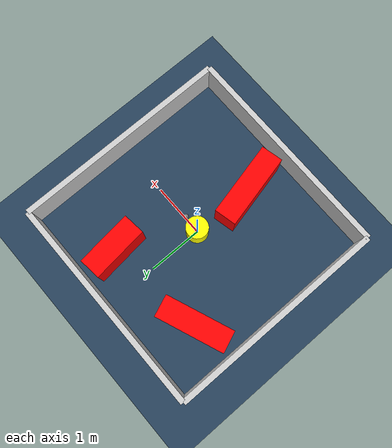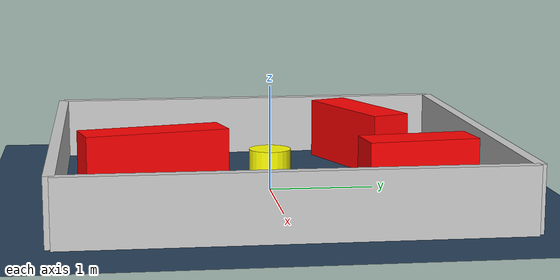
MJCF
<?xml version="1.0" ?>
<mujoco model="generated_environment">
  <option timestep="0.01" integrator="RK4" cone="elliptic"/>
  <default>
    <geom density="1"/>
  </default>
  <asset>
    <texture builtin="gradient" height="3072" rgb1="0.3 0.5 0.7" rgb2="0 0 0" type="skybox" width="512"/>
    <texture builtin="checker" height="300" mark="edge" markrgb="0.8 0.8 0.8" name="groundplane" rgb1="0.2 0.3 0.4" rgb2="0.1 0.2 0.3" type="2d" width="300"/>
    <material name="groundplane" reflectance="0.2" texrepeat="5 5" texture="groundplane" texuniform="true"/>
    <material name="robot" rgba="0.0 1.0 0.0 1"/>
  </asset>
  <worldbody>
    <light dir="0 0 -1" directional="true" pos="0 0 1.5"/>
    <geom condim="4" friction="1.0 0.005 0.001" material="groundplane" name="floor" size="0 0 0.05" type="plane"/>
    <body name="walls">
      <geom name="wall_1" condim="4" pos="-2.0 0.0 0.3" rgba="0.800000011920929 0.800000011920929 0.800000011920929 1.0" size="0.05 2.0 0.3" type="box"/>
      <geom name="wall_2" condim="4" pos="2.0 0.0 0.3" rgba="0.800000011920929 0.800000011920929 0.800000011920929 1.0" size="0.05 2.0 0.3" type="box"/>
      <geom name="wall_3" condim="4" pos="0.0 -2.0 0.3" rgba="0.800000011920929 0.800000011920929 0.800000011920929 1.0" size="2.0 0.05 0.3" type="box"/>
      <geom name="wall_4" condim="4" pos="0.0 2.0 0.3" rgba="0.800000011920929 0.800000011920929 0.800000011920929 1.0" size="2.0 0.05 0.3" type="box"/>
    </body>
    <body name="robot">
      <joint name="joint_x" type="slide" pos="0 0 0" axis="1 0 0"/>
      <joint name="joint_y" type="slide" pos="0 0 0" axis="0 1 0"/>
      <geom name="robot" type="sphere" pos="0.3 0.0 0.2" size="0.05" mass="5." friction="1.0 0.005 0.0001" condim="4" rgba="0.5 0.5 0.5 1.0"/>
      <site name="sensor_ball"/>
    </body>
    <body name="obstacle_movable_1">
      <geom name="obstacle_movable_1" condim="4" pos="0.0 0.0 0.2" euler="0 0 0.0" friction="1.0 0.005 0.001" rgba="1.0 1.0 0.0 1.0" size="0.2 0.2 0.0" type="cylinder" mass="0.1"/>
      <joint type="free"/>
    </body>
    <body name="obstacle_2_static">
      <geom name="obstacle_2_static" condim="4" pos="-1.1940994448564473 1.080529678050265 0.3" euler="0 0 201.63277722252064" friction="1.0 0.005 0.001" rgba="1 0 0 1" size="0.624104761732382 0.2 0.3" type="box"/>
    </body>
    <body name="obstacle_3_static">
      <geom name="obstacle_3_static" condim="4" pos="0.6417290198028494 1.2952219207702742 0.3" euler="0 0 96.19397295882423" friction="1.0 0.005 0.001" rgba="1 0 0 1" size="0.5183131151232603 0.2 0.3" type="box"/>
    </body>
    <body name="obstacle_4_static">
      <geom name="obstacle_4_static" condim="4" pos="-0.04598583043814819 -1.1068217724505267 0.3" euler="0 0 283.1996319451347" friction="1.0 0.005 0.001" rgba="1 0 0 1" size="0.6896308209199392 0.2 0.3" type="box"/>
    </body>
  </worldbody>
  <actuator>
    <motor name="actuator_x" joint="joint_x" gear="1" ctrlrange="-1 1"/>
    <motor name="actuator_y" joint="joint_y" gear="1" ctrlrange="-1 1"/>
  </actuator>
</mujoco>
